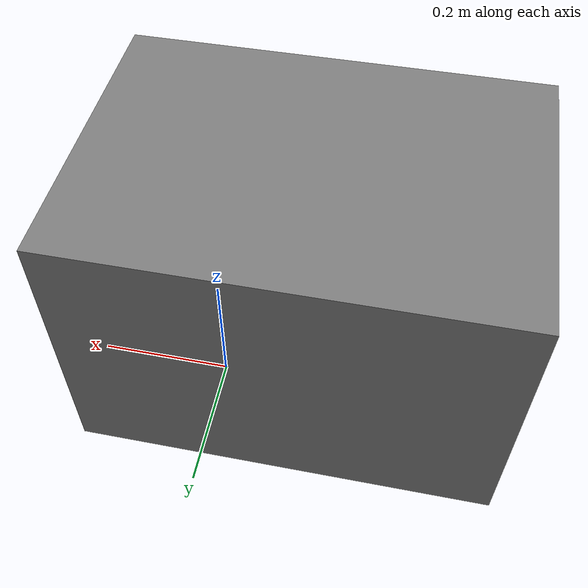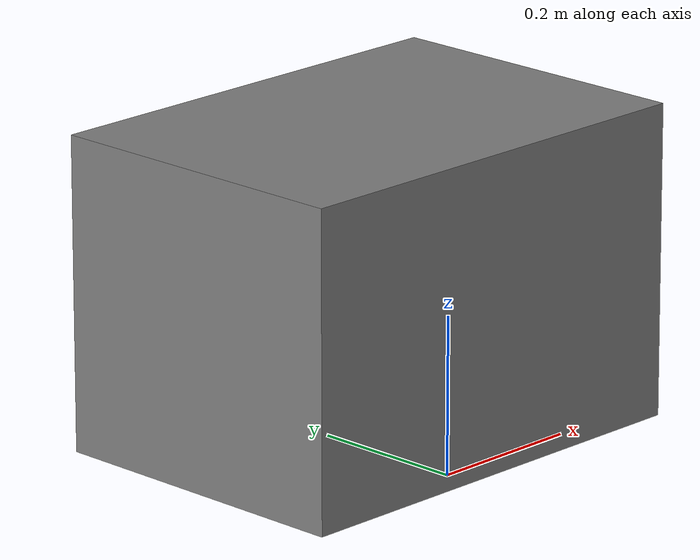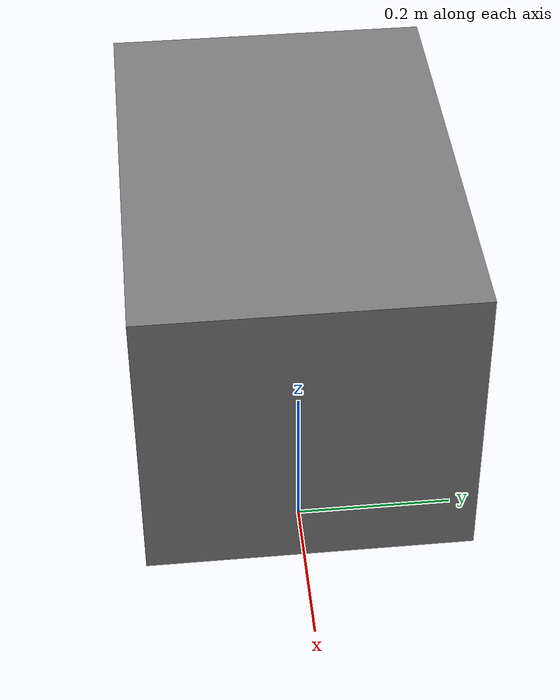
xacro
<?xml version="1.0"?>
<robot name="my_robot" xmlns:xacro="http://www.ros.org/wiki/xacro">

  <!-- ── DIMENSIONS ── -->
  <xacro:property name="base_length"  value="0.565"/>
  <xacro:property name="base_width"   value="0.400"/>
  <xacro:property name="base_height"  value="0.384"/>
  <xacro:property name="wheel_radius" value="0.0875"/>
  <xacro:property name="wheel_width"  value="0.040"/>
  <xacro:property name="wheel_base"   value="0.275"/>

  <!-- ── BASE FOOTPRINT ── -->
  <link name="base_footprint"/>

  <!-- ── BASE LINK (origin at wheel axle, ground level) ── -->
  <link name="base_link">
    <visual>
      <origin xyz="-0.1325 0 0.192" rpy="0 0 0"/>
      <geometry>
        <box size="${base_length} ${base_width} ${base_height}"/>
      </geometry>
      <material name="grey"><color rgba="0.5 0.5 0.5 1"/></material>
    </visual>
    <collision>
      <origin xyz="-0.1325 0 0.192" rpy="0 0 0"/>
      <geometry>
        <box size="${base_length} ${base_width} ${base_height}"/>
      </geometry>
    </collision>
    <inertial>
      <mass value="10.0"/>
      <inertia ixx="0.2" iyy="0.2" izz="0.2" ixy="0" ixz="0" iyz="0"/>
    </inertial>
  </link>

  <!-- base_footprint is directly below wheel axle on ground -->
  <joint name="base_footprint_joint" type="fixed">
    <parent link="base_footprint"/>
    <child  link="base_link"/>
    <origin xyz="0 0 ${wheel_radius}" rpy="0 0 0"/>
  </joint>

  <!-- ── LIDAR ── -->
  <!-- 12.5cm forward of wheel axle, 43.90cm above base_link -->
  <link name="laser_frame"/>
  <joint name="laser_joint" type="fixed">
    <parent link="base_link"/>
    <child  link="laser_frame"/>
    <origin xyz="0.125 0.0 0.4390" rpy="0 0 0"/>
  </joint>

  <!-- ── REALSENSE D435 ── -->
  <!-- 41.5cm forward of wheel axle, 30.25cm above base_link -->
  <link name="camera_link"/>
  <joint name="camera_joint" type="fixed">
    <parent link="base_link"/>
    <child  link="camera_link"/>
    <origin xyz="0.415 0.0 0.3025" rpy="0 0 0"/>
  </joint>

  <!-- camera optical frame -->
  <link name="camera_color_optical_frame"/>
  <joint name="camera_optical_joint" type="fixed">
    <parent link="camera_link"/>
    <child  link="camera_color_optical_frame"/>
    <origin xyz="0 0 0" rpy="-1.5708 0 -1.5708"/>
  </joint>

  <!-- ── IMU ── -->
  <!-- 13.25cm forward of wheel axle, 27.75cm above base_link -->
  <link name="imu_link"/>
  <joint name="imu_joint" type="fixed">
    <parent link="base_link"/>
    <child  link="imu_link"/>
    <origin xyz="0.1325 0.0 0.2775" rpy="0 0 0"/>
  </joint>

  <!-- ===== Ultrasonic sensor frames ===== -->
  <!-- FL: 40cm forward, 19cm left, facing NW (+45°) -->
  <link name="us_fl_link"/>
  <joint name="us_fl_joint" type="fixed">
    <parent link="base_link"/>
    <child  link="us_fl_link"/>
    <origin xyz="0.40  0.19  -0.0041" rpy="0 0 0.7854"/>
  </joint>

  <!-- FR: 40cm forward, 19cm right, facing NE (-45°) -->
  <link name="us_fr_link"/>
  <joint name="us_fr_joint" type="fixed">
    <parent link="base_link"/>
    <child  link="us_fr_link"/>
    <origin xyz="0.40 -0.19  -0.0041" rpy="0 0 -0.7854"/>
  </joint>

  <!-- BL: 14cm backward, 19cm left, facing SW (+135°) -->
  <link name="us_bl_link"/>
  <joint name="us_bl_joint" type="fixed">
    <parent link="base_link"/>
    <child  link="us_bl_link"/>
    <origin xyz="-0.14  0.19  -0.0041" rpy="0 0 2.3562"/>
  </joint>

  <!-- BR: 14cm backward, 19cm right, facing SE (-135°) -->
  <link name="us_br_link"/>
  <joint name="us_br_joint" type="fixed">
    <parent link="base_link"/>
    <child  link="us_br_link"/>
    <origin xyz="-0.14 -0.19  -0.0041" rpy="0 0 -2.3562"/>
  </joint>
</robot>
